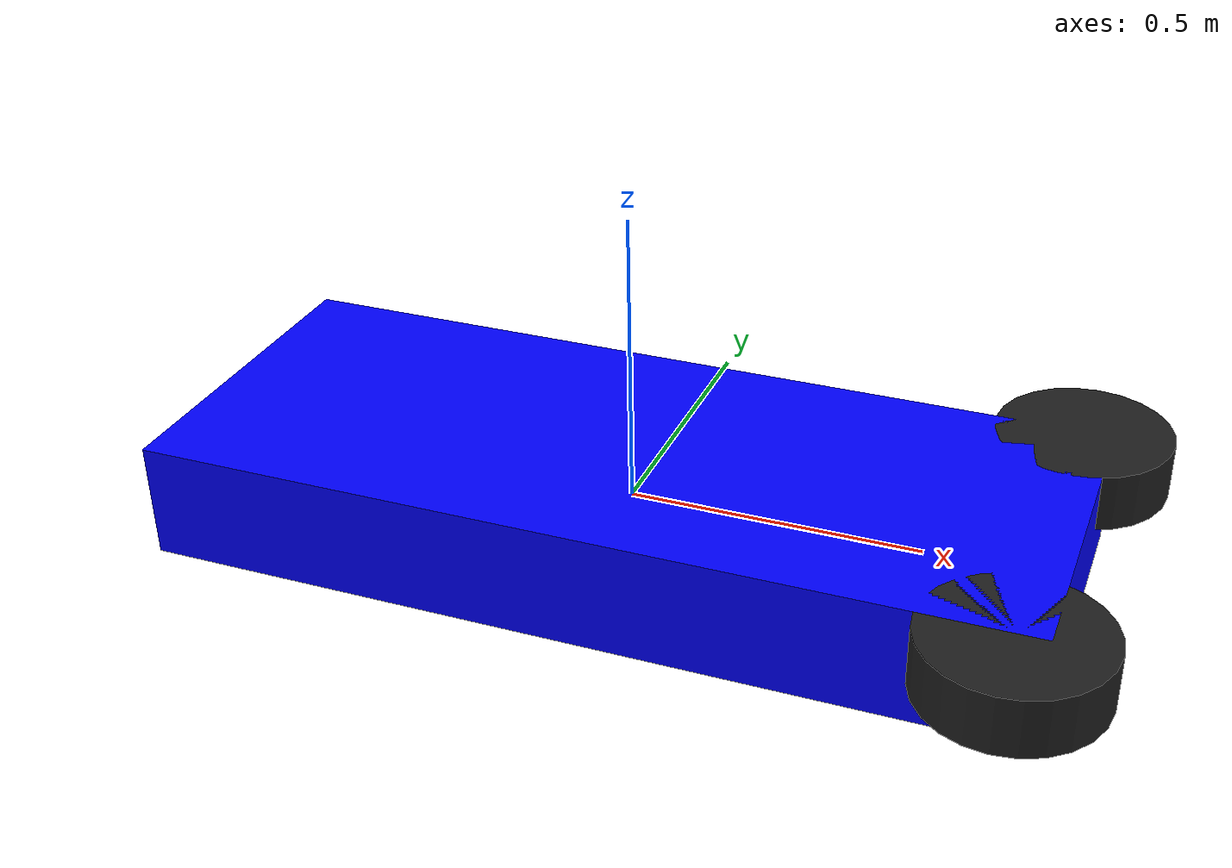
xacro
<?xml version="1.0"?>
<robot name="ev_rwd" xmlns:xacro="http://ros.org/wiki/xacro">
  <!-- Base link (chassis) -->
  <link name="chassis">
    <inertial>
      <origin xyz="0 0 0.1"/>
      <mass value="250.0"/> <!-- Adjust mass value as needed -->
      <inertia ixx="10.0" ixy="0.0" ixz="0.0" iyy="20.0" iyz="0.0" izz="30.0"/>
    </inertial>
    <visual>
      <geometry>
        <box size="1.5 0.6 0.2"/>
      </geometry>
      <material name="blue">
        <color rgba="0.0 0.0 1.0 1.0"/>
      </material>
    </visual>
    <collision>
      <geometry>
        <box size="1.5 0.6 0.2"/>
      </geometry>
    </collision>
  </link>

  <!-- Define the rear wheels -->
  <link name="rear_left_wheel">
    <visual>
      <geometry>
        <cylinder radius="0.15" length="0.1"/>
      </geometry>
      <material name="black"/>
    </visual>
    <collision>
      <geometry>
        <cylinder radius="0.15" length="0.1"/>
      </geometry>
    </collision>
  </link>

  <link name="rear_right_wheel">
    <visual>
      <geometry>
        <cylinder radius="0.15" length="0.1"/>
      </geometry>
      <material name="black"/>
    </visual>
    <collision>
      <geometry>
        <cylinder radius="0.15" length="0.1"/>
      </geometry>
    </collision>
  </link>

  <!-- Rear wheel joints -->
  <joint name="rear_left_wheel_joint" type="continuous">
    <parent link="chassis"/>
    <child link="rear_left_wheel"/>
    <origin xyz="0.7 0.3 0.05" rpy="0 0 0"/>
    <axis xyz="0 1 0"/>
  </joint>

  <joint name="rear_right_wheel_joint" type="continuous">
    <parent link="chassis"/>
    <child link="rear_right_wheel"/>
    <origin xyz="0.7 -0.3 0.05" rpy="0 0 0"/>
    <axis xyz="0 1 0"/>
  </joint>

  <!-- Add front wheels and joints similarly (steerable) -->
</robot>
